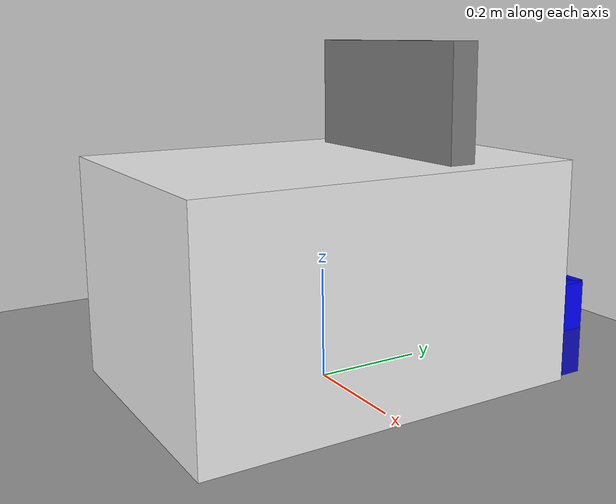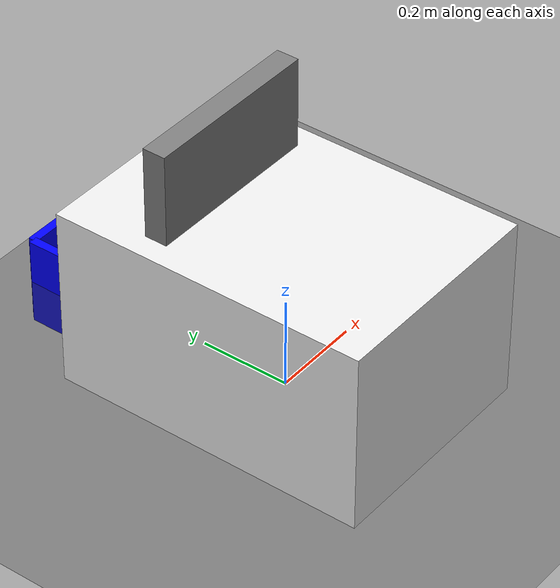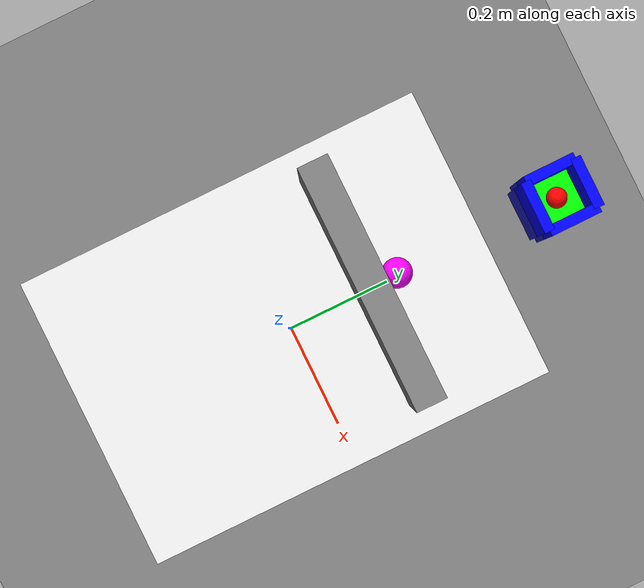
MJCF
<?xml version="1.0" encoding="utf-8"?>
<mujoco model="gripper_only_robot">
    <compiler angle="radian" coordinate="local" texturedir="../textures"></compiler>
    <asset>
        <texture type="skybox" builtin="gradient" rgb1="0.44 0.85 0.56" rgb2="0.46 0.87 0.58" width="32" height="32"></texture>
        <texture name="texture_block" file="block.png" gridsize="3 4" gridlayout=".U..LFRB.D.."></texture>

        <material name="floor_mat" specular="0" shininess="0.5" reflectance="0" rgba="0.2 0.2 0.2 1"></material>
        <material name="table_mat" specular="0" shininess="0.5" reflectance="0" rgba="0.93 0.93 0.93 1"></material>
        <material name="block_mat" specular="0" shininess="0.5" reflectance="0" rgba="0.2 0.2 0.2 1"></material>
        <material name="puck_mat" specular="0" shininess="0.5" reflectance="0" rgba="0.2 0.2 0.2 1"></material>
    </asset>
    <asset>
    </asset>
    <worldbody>
		<geom name="floor0" pos="0 0 0" size="0.85 0.7 1" type="plane" condim="3" material="floor_mat"></geom>
		<body pos="0 0 0.2" name="table0">
			<geom size="0.25 0.35 0.2" type="box" mass="2000" material="table_mat"></geom>
		</body>

        <body name="sweeper" pos="0 0.15 0.4">
            <joint name="slide_y" type="slide" limited="true" axis="0 1 0" range="-1.5 1.5" damping="1000" />
            <joint name="rotate_z" type="hinge" limited="true" axis="0 0 1" range="-31.4 31.4" damping="1000" />
            <geom name="arm" type="box" size=".2 .025 .1" pos="0 0 0.1" contype="3" conaffinity="3"/>
        </body>

		<body name="object0" pos="0 0.2 0.42">
			<joint name="object0:joint" type="free" damping="0.01"></joint>
			<geom size="0.025" type="sphere" condim="3" name="object0" rgba="1 0 1 1" mass="2"></geom>
			<site name="object0" pos="0 0 0" size="0.02 0.02 0.02" rgba="1 0 0 1" type="sphere"></site>
		</body>

        <include file="small_bin.xml"></include>
		<light directional="true" ambient="0.2 0.2 0.2" diffuse="0.8 0.8 0.8" specular="0.3 0.3 0.3" castshadow="false" pos="0 0 4" dir="0 0 -1" name="light0"></light>

        <body name="overhead_camera">
            <camera name="overhead_camera" fovy="60" mode="fixed" pos="0 0.35 0.9" euler="0 0.0 1.57"  />
        </body>
        <body name="robot_camera">
            <camera name="robot_camera" pos="0.007 -0.2 0.751" xyaxes="1.0 0 0 0.0 0.5 0.872"/>
        </body>

    </worldbody>
    <actuator>
        <motor joint="slide_y" gear="2000" ctrlrange="0 1" ctrllimited="true"/>
        <motor joint="rotate_z" gear="1000" ctrlrange="-1 1" ctrllimited="true"/>
    </actuator>
</mujoco>

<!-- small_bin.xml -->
<mujoco>
    <body name="bin" pos="0 0.55 0">
        <site name="bin_site" pos="0 0 0.03" size="0.02 0.02 0.02" rgba="1 0 0 1" type="sphere"></site>
        <geom rgba="0 1 0 1" name="bottom" type="box" size=".05 .05 .025" pos="0 0 0"/>
        <geom rgba="0 0 1 1" name="wall_1" type="box" size="0.05 .01 .1" pos="0 -0.05 0"/>
        <geom rgba="0 0 1 1" name="wall_2" type="box" size="0.05 .01 .1" pos="0 0.05 0"/>
        <geom rgba="0 0 1 1" name="wall_3" type="box" size="0.01 .05 .1" pos="0.05 0.0 0"/>
        <geom rgba="0 0 1 1" name="wall_4" type="box" size="0.01 .05 .1" pos="-0.05 0.0 0"/>
    </body>
</mujoco>
